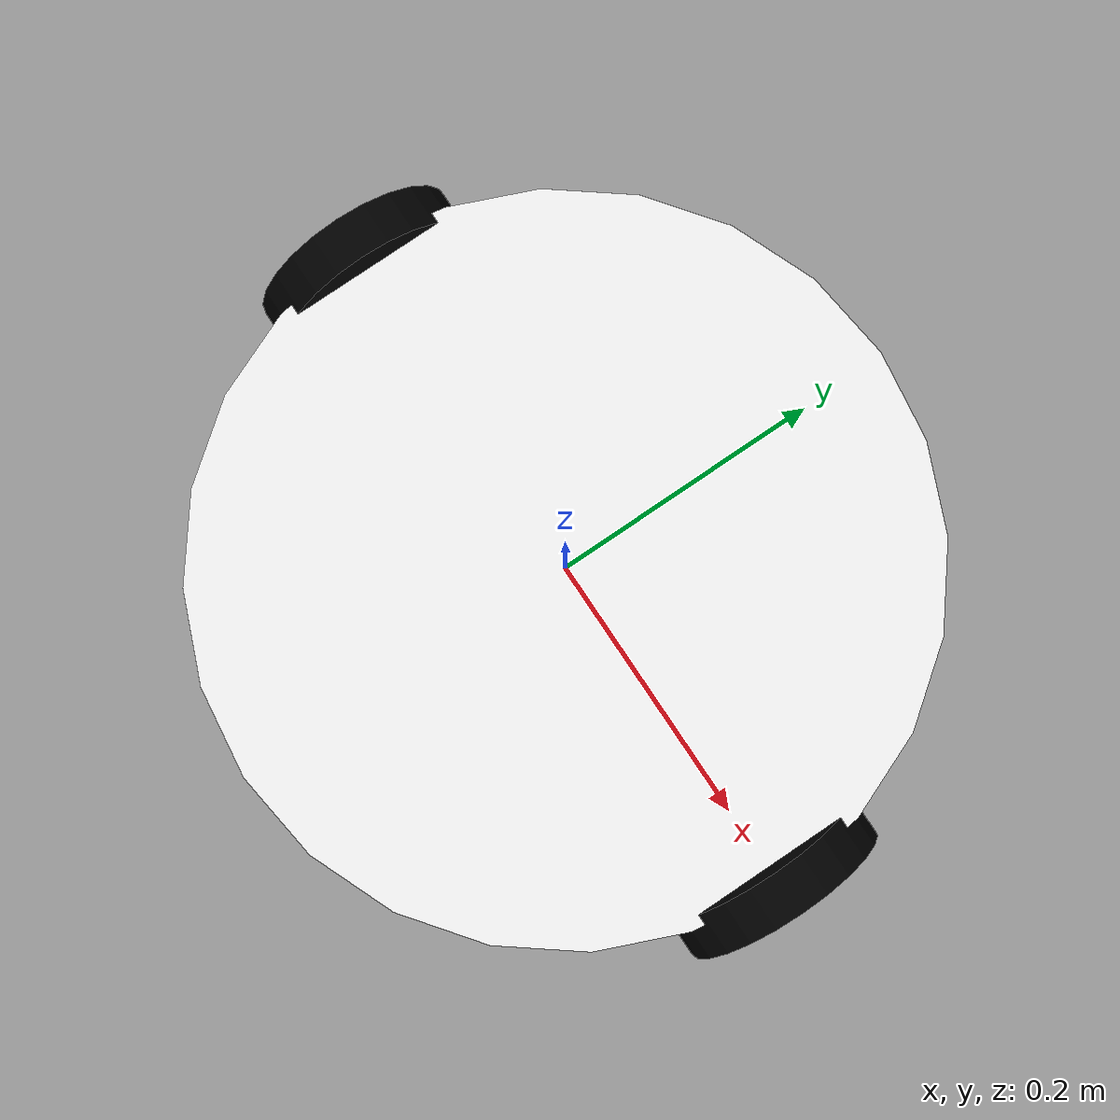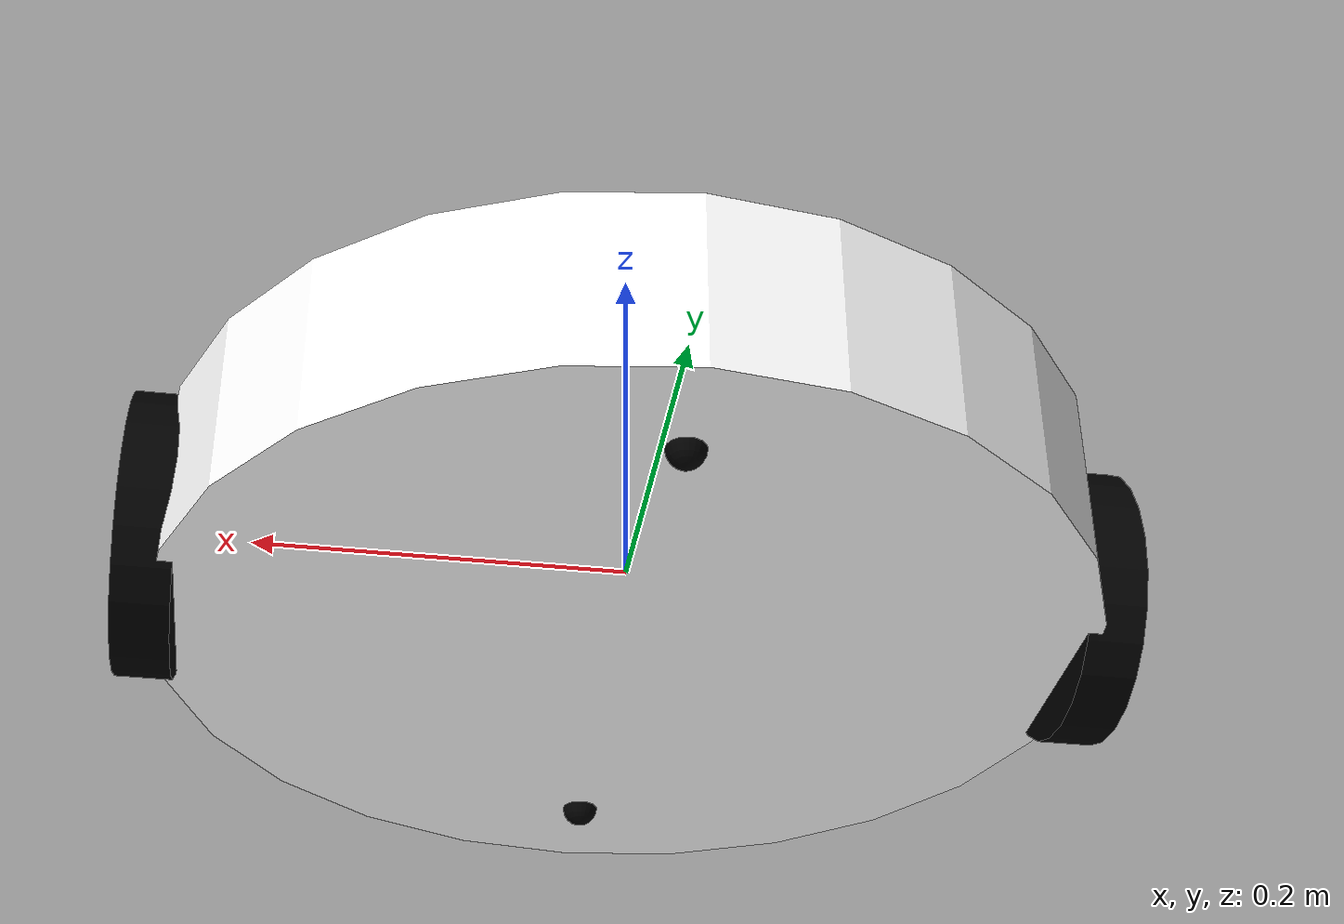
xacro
<?xml version="1.0"?>
<robot name="simple-robot" xmlns:xacro="http://www.ros.org/wiki/xacro">

	<xacro:property name="lift" value="0"/>

	<xacro:property name="wheel_radius" value=".075"/>
	<xacro:property name="wheel_width" value=".03"/>

	<xacro:property name="base_radius" value=".25"/>
	<xacro:property name="base_height" value=".1"/>

	<xacro:property name="caster_radius" value=".01"/>

	<material name="white">
		<color rgba="1 1 1 1"/>
	</material>

	<material name="black">
		<color rgba="0 0 0 1"/>
	</material>

	<link name="base_link">
		<visual>
			<origin xyz= "0 0 ${lift}" />
			<geometry>
				<cylinder length="${base_height}" radius="${base_radius}"/>
			</geometry>
			<material name="white"/>
		</visual>
		<collision>
			<origin xyz= "0 0 ${lift}" />
			<geometry>
				<cylinder length="${base_height}" radius="${base_radius}"/>
			</geometry>
		</collision>
		<inertial>
			<mass value="10"/>
			<inertia ixx="0.4" ixy="0.0" ixz="0.0" iyy="0.4" iyz="0.0" izz="0.2"/>
		</inertial>
	</link>

	<link name="left_wheel">
		<visual>
			<origin xyz= "0 0 ${lift}" rpy= "0 1.5708 0" />
			<geometry>
				<cylinder length="${wheel_width}" radius="${wheel_radius}"/>
			</geometry>
			<material name="black"/>
		</visual>
		<collision>
			<origin xyz= "0 0 ${lift}" rpy= "0 1.5708 0" />
			<geometry>
				<cylinder length="${wheel_width}" radius="${wheel_radius}"/>
			</geometry>
		</collision>
		<inertial>
			<mass value="10"/>
			<inertia ixx="0.4" ixy="0.0" ixz="0.0" iyy="0.4" iyz="0.0" izz="0.2"/>
		</inertial>
	</link>

	<link name="right_wheel">
		<visual>
			<origin xyz= "0 0 ${lift}" rpy= "0 1.5708 0" />
			<geometry>
				<cylinder length="${wheel_width}" radius="${wheel_radius}"/>
			</geometry>
			<material name="black"/>
		</visual>
		<collision>
			<origin xyz= "0 0 ${lift}" rpy= "0 1.5708 0" />
			<geometry>
				<cylinder length="${wheel_width}" radius="${wheel_radius}"/>
			</geometry>
		</collision>
		<inertial>
			<mass value="10"/>
			<inertia ixx="0.4" ixy="0.0" ixz="0.0" iyy="0.4" iyz="0.0" izz="0.2"/>
		</inertial>
	</link>

	<link name="front_caster">
		<visual>
			<origin xyz= "0 0 ${lift}" />
			<geometry>
				<sphere radius="${caster_radius}"/>
			</geometry>
			<material name="black"/>
		</visual>
		<collision>
			<origin xyz= "0 0 ${lift}" />
			<geometry>
				<sphere radius="${caster_radius}"/>
			</geometry>
		</collision>
		<inertial>
			<mass value="10"/>
			<inertia ixx="0.4" ixy="0.0" ixz="0.0" iyy="0.4" iyz="0.0" izz="0.2"/>
		</inertial>
	</link>

	<link name="rear_caster">
		<visual>
			<origin xyz= "0 0 ${lift}" />
			<geometry>
				<sphere radius="${caster_radius}"/>
			</geometry>
			<material name="black"/>
		</visual>
		<collision>
			<origin xyz= "0 0 ${lift}" />
			<geometry>
				<sphere radius="${caster_radius}"/>
			</geometry>
		</collision>
		<inertial>
			<mass value="10"/>
			<inertia ixx="0.4" ixy="0.0" ixz="0.0" iyy="0.4" iyz="0.0" izz="0.2"/>
		</inertial>
	</link>

	<joint name="left_wheel_joint" type="continuous">
		<parent link="base_link"/>
		<child link="left_wheel"/>
		<origin xyz="${base_radius} 0 0" />
		<axis xyz= "1 0 0" />
	</joint>

	<joint name="right_wheel_joint" type="continuous">
		<parent link="base_link"/>
		<child link="right_wheel"/>
		<origin xyz="${-base_radius} 0 0" />
		<axis xyz= "1 0 0" />
	</joint>

	<joint name="front_caster_joint" type="fixed">
		<parent link="base_link"/>
		<child link="front_caster"/>
		<origin xyz="0 ${-base_radius + base_radius/4} ${-base_height/2}" />
		<axis xyz= "1 0 0" />
	</joint>

	<joint name="rear_caster_joint" type="fixed">
		<parent link="base_link"/>
		<child link="rear_caster"/>
		<origin xyz="0 ${base_radius - base_radius/4} ${-base_height/2}" />
		<axis xyz= "1 0 0" />
	</joint>

	<gazebo>
		<plugin name="differential_drive_controller" filename="libgazebo_ros_diff_drive.so">
			<alwaysOn>true</alwaysOn>
			<legacyMode>true</legacyMode>
			<updateRate>20</updateRate>
			<leftJoint>left_wheel_joint</leftJoint>
			<rightJoint>right_wheel_joint</rightJoint>
			<wheelSeparation>0.4</wheelSeparation>
			<wheelDiameter>.15</wheelDiameter>
			<torque>10</torque>
			<commandTopic>cmd_vel</commandTopic>
			<odometryTopic>odom</odometryTopic>
			<odometryFrame>odom</odometryFrame>
			<robotBaseFrame>base_footprint</robotBaseFrame>
		</plugin>
	</gazebo>

</robot>
